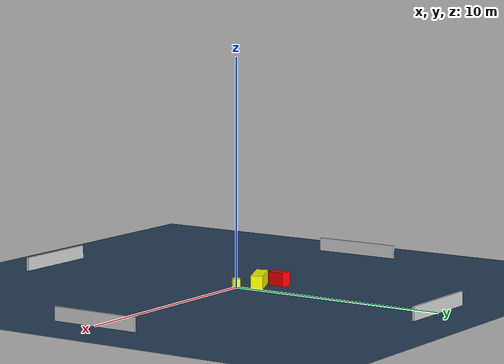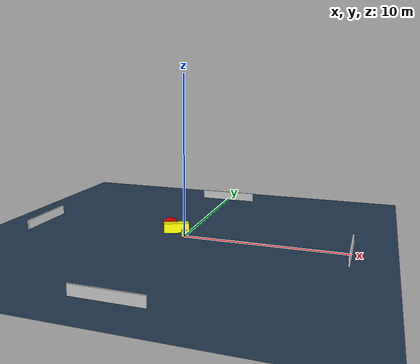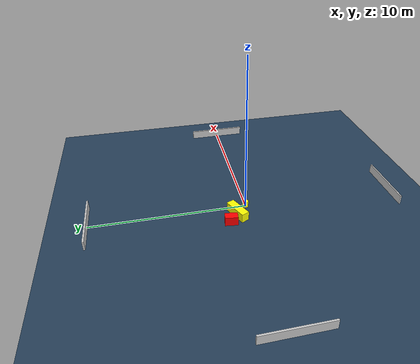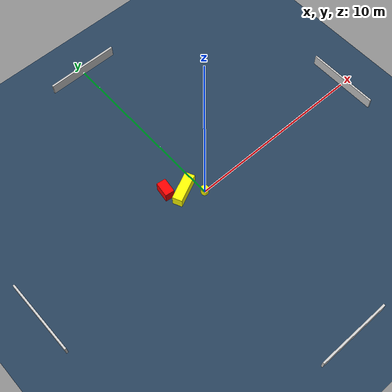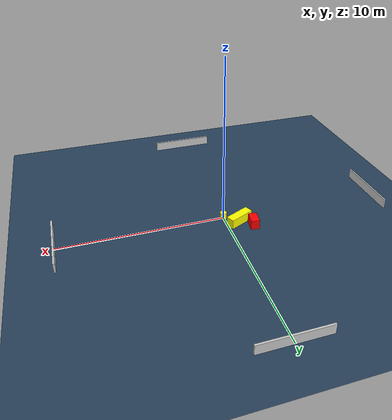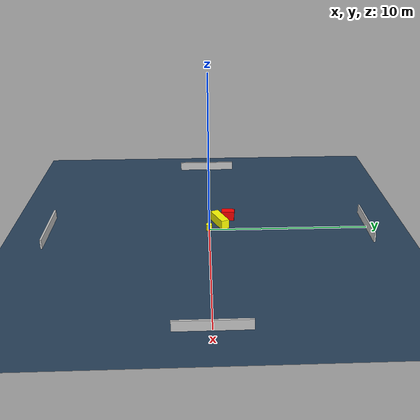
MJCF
<?xml version="1.0" ?>
<mujoco model="generated_environment">
  <option timestep="0.01" integrator="RK4" cone="elliptic"/>
  <default>
    <geom density="1"/>
  </default>
  <asset>
    <texture builtin="gradient" height="3072" name="skybox" rgb1="0.3 0.5 0.7" rgb2="0 0 0" type="skybox" width="512"/>
    <texture builtin="checker" height="300" name="groundplane" rgb1="0.2 0.3 0.4" rgb2="0.1 0.2 0.3" type="2d" width="300"/>
    <material name="groundplane" reflectance="0.2" texrepeat="5 5" texture="groundplane"/>
  </asset>
  <worldbody>
    <light dir="0 0 -1" directional="true" pos="0 0 1.5"/>
    <geom condim="3" friction="0.5 0.005 0.001" material="groundplane" name="floor" pos="0 0 0" size="0 0 0.05" type="plane"/>
    <body name="walls">
      <geom name="wall_1" condim="4" pos="-10.0 0.0 0.3" rgba="0.800000011920929 0.800000011920929 0.800000011920929 1.0" size="0.05 2.0 0.3" type="box"/>
      <geom name="wall_2" condim="4" pos="10.0 0.0 0.3" rgba="0.800000011920929 0.800000011920929 0.800000011920929 1.0" size="0.05 2.0 0.3" type="box"/>
      <geom name="wall_3" condim="4" pos="0.0 -10.0 0.3" rgba="0.800000011920929 0.800000011920929 0.800000011920929 1.0" size="2.0 0.05 0.3" type="box"/>
      <geom name="wall_4" condim="4" pos="0.0 10.0 0.3" rgba="0.800000011920929 0.800000011920929 0.800000011920929 1.0" size="2.0 0.05 0.3" type="box"/>
    </body>
    <body name="robot">
      <joint name="joint_x" type="slide" pos="0 0 0" axis="1 0 0"/>
      <joint name="joint_y" type="slide" pos="0 0 0" axis="0 1 0"/>
      <geom name="robot" type="cylinder" pos="0.0 0.0 0.2" size="0.2 0.2 0.0" mass="5.0" friction="1.0 0.005 0.0001" condim="4" rgba="1.0 1.0 0.0 1.0"/>
    </body>
    <body name="obstacle_1_movable">
      <geom name="obstacle_1_movable" condim="4" pos="-0.7848376552337206 0.6923512464565237 0.3" euler="0 0 24.93217667512004" friction="0.0 0.005 0.001" rgba="1.0 1.0 0.0 1.0" size="0.7931062669342617 0.2612182558207252 0.3" type="box" mass="0.1"/>
      <joint type="free"/>
    </body>
    <body name="obstacle_2_static">
      <geom name="obstacle_2_static" condim="4" pos="-1.484898351820636 1.2569744506299876 0.3" euler="0 0 83.03558528782234" friction="0.0 0.005 0.001" rgba="1.0 0.0 0.0 1.0" size="0.40747043577527337 0.2531973620704788 0.3" type="box"/>
    </body>
  </worldbody>
  <actuator>
    <motor name="actuator_x" joint="joint_x" gear="1" ctrlrange="-1 1"/>
    <motor name="actuator_y" joint="joint_y" gear="1" ctrlrange="-1 1"/>
  </actuator>
</mujoco>
